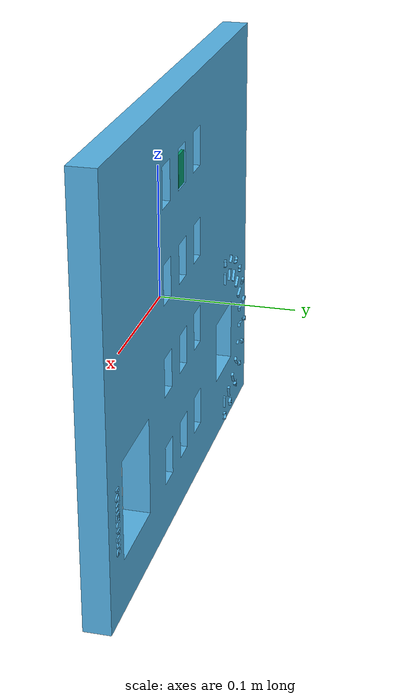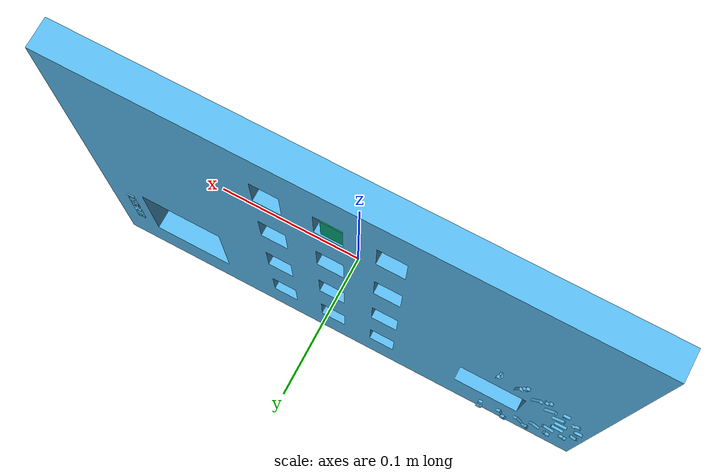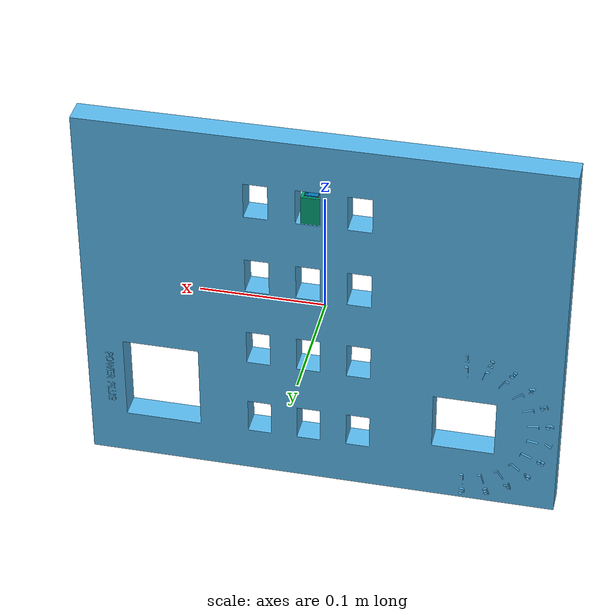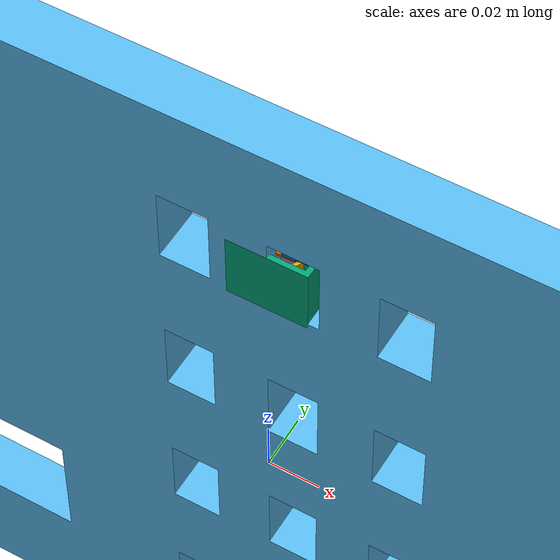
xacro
<?xml version="1.0"?>
<robot name="robocol_rover" xmlns:xacro="http://www.ros.org/wiki/xacro">
	<!-- Inertia matrices -->
	<xacro:include filename="$(find panel_description)/urdf/macros.xacro" />
	<!-- Robot constants and properties -->
	<xacro:include filename="$(find panel_description)/urdf/properties.xacro" />
	<!-- Gazebo aspects of the robot -->
	<!-- box -->
	<xacro:include filename="$(find panel_description)/urdf/box.xacro" />
	<xacro:include filename="$(find panel_description)/urdf/switch.xacro" />
	<xacro:include filename="$(find panel_description)/urdf/sector_switches.xacro" />

	<!-- sector_buttons -->
	<!-- sector_extra -->
	<!-- sector_switches -->
	<!-- Join parts -->

	<xacro:sector_switches/>
</robot>

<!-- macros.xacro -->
<!-- definitions of some macros for easier description of the robot-->
<robot xmlns:xacro="http://www.ros.org/wiki/xacro">
	<xacro:macro name="cylinder_inertia" params="m r h">
		<inertia
			ixx="${m*(3*r*r+h*h)/12}"
			ixy = "0"
			ixz = "0"
			iyy="${m*(3*r*r+h*h)/12}"
			iyz = "0"
			izz="${m*r*r/2}"
		/>
	</xacro:macro>
	<xacro:macro name="box_inertia" params="m x y z">
		<inertia
			ixx="${m*(y*y+z*z)/12}"
			ixy = "0"
			ixz = "0"
			iyy="${m*(x*x+z*z)/12}"
			iyz = "0"
			izz="${m*(x*x+z*z)/12}"
		/>
	</xacro:macro>
	<xacro:macro name="sphere_inertia" params="m r">
		<inertia
			ixx="${2*m*r*r/5}"
			ixy = "0"
			ixz = "0"
			iyy="${2*m*r*r/5}"
			iyz = "0"
			izz="${2*m*r*r/5}"
		/>
	</xacro:macro>
</robot>

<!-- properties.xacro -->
<robot xmlns:xacro="http://www.ros.org/wiki/xacro">
	<!-- Constants -->
	<xacro:property name="PI" value="3.1415926535897931"/>
	<!-- Scaling -->
	<xacro:property name="scale_XYZ" value="0.01"/>
	<xacro:property name="inertia_scale" value="0.0000001"/>
	<!-- Camera -->
	<xacro:property name="camera_link" value="0.05" /> <!-- Size of square 'camera' box -->
	<!-- Panel properties -->
	<xacro:property name="boxMass" value="1"/>
	<xacro:property name="boxWidth" value="0.4327"/>
	<xacro:property name="boxLength" value="0.72"/>
	<xacro:property name="boxHeight" value="0.174"/>
	<!-- box properties -->
	<xacro:property name="buttonMass" value="10"/>
	<xacro:property name="buttonWidth" value="0.4327"/>
	<xacro:property name="buttonLength" value="0.72"/>
	<xacro:property name="buttonHeight" value="0.174"/>
	<!-- Pot properties -->

	<!-- Switch properties -->
	<!-- Switch box properties-->
	<xacro:property name="switchboxMass" value="0.770"/>
	<xacro:property name="switchboxWidth" value="0.320"/>
	<xacro:property name="switchboxLength" value="0.380"/>
	<xacro:property name="switchboxHeight" value="0.020"/>
	<!-- enclosure properties -->
	<xacro:property name="enclosureMass" value="0.005"/>
	<xacro:property name="enclosureWidth" value="0.019"/>
	<xacro:property name="enclosureLength" value="0.030"/>
	<xacro:property name="enclosureHeight" value="0.026"/>
	<!-- Base properties -->
	<xacro:property name="baseMass" value="0.016"/>
	<xacro:property name="baseWidth" value="0.010"/>
	<xacro:property name="baseLength" value="0.010"/>
	<xacro:property name="baseHeight" value="0.070"/>
	<!-- Triangle properties -->
	<xacro:property name="triangleMass" value="0.010"/>
	<xacro:property name="triangleWidth" value="0.010"/>
	<xacro:property name="triangleLength" value="0.02"/>
	<xacro:property name="triangleHeight" value="0.010"/>
	<!-- Trigger properties -->
	<xacro:property name="triggerMass" value="0.002"/>
	<xacro:property name="triggerRadio" value="0.003"/>
	<xacro:property name="triggerHeight" value="0.011"/>
	<!-- Spring properties -->
	<xacro:property name="springMass" value="0.003"/>
	<xacro:property name="springRadio" value="0.00275"/>
	<xacro:property name="springHeight" value="0.005"/>
	<!-- Lever properties -->
	<xacro:property name="leverMass" value="0.008"/>
	<xacro:property name="leverRadio" value="0.0045"/>
	<xacro:property name="leverHeight" value="0.030"/>

	<!-- Pot properties -->

	<!-- Pot properties -->

	<!-- Pot properties -->

	<!-- Suspension -->
	<xacro:property name="suspensionEffort" value="10.0"/>
	<xacro:property name="suspensionSpeed" value="10.0"/>
	<xacro:property name="suspensionDamping" value="0.5"/>
	<xacro:property name="suspensionFriction" value="5.0"/>
	<!-- Wheels properties -->
	<xacro:property name="wheelWidth" value="0.08096"/>
	<xacro:property name="wheelRadius" value="0.1347"/>
	<xacro:property name="wheelMass" value="3.5"/>
	-->
</robot>

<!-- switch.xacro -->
<robot xmlns:xacro="http://www.ros.org/wiki/xacro">
	<xacro:macro name="switch" params="parent_sector_link child_link x y">

		<!-- SECTOR_SWITCH TO CYLINDER JOINT -->
		<joint name="sector_switch_joint" type="fixed">
			<parent link="${parent_sector_link}"/>
			<child link="${child_link}"/>
			<origin xyz="${x} ${y} 0.1" rpy="0 ${PI/2} 0"/>
		</joint>
		<!-- Switch sector LID -->
		<link name="${child_link}">
			<collision>
				<origin xyz="0 0 0"	rpy="0 0 0"/>
				<geometry>
					<mesh filename="package://panel_description/meshes/collisions/Interruptor/Enclosure.stl" scale="${scale_XYZ} ${scale_XYZ} ${scale_XYZ}"/>
				</geometry>
			</collision>
			<visual>
				<origin xyz="0 0 0"	rpy="0 0 0"/>
				<geometry>
					<mesh filename="package://panel_description/meshes/visual/Interruptor/Enclosure.stl" scale="${scale_XYZ} ${scale_XYZ} ${scale_XYZ}"/>
				</geometry>
			</visual>
			<inertial>
				<origin xyz="0 0 0"	rpy="0 0 0"/>
				<mass value="${enclosureMass}"/>
				<xacro:box_inertia m="${enclosureMass}" x="${enclosureWidth}" y="${enclosureLength}" z="${enclosureHeight}" />
			</inertial>
		</link>

		<!-- Enclosure TO Base1 JOINT -->
		<joint name="enclosure_base1_joint" type="fixed">
			<parent link="${child_link}"/>
			<child link="base1_link"/>
			<origin xyz="${-0.0125} ${0.01} ${-0.0125}" rpy="0 ${-3*PI/2} ${-PI/2}"/>
		</joint>

		<link name='base1_link'>
			<collision>
				<origin xyz="0 0 0"	rpy="0 0 0"/>
				<geometry>
					<mesh filename="package://panel_description/meshes/collisions/Interruptor/Base1.stl" scale="${scale_XYZ} ${scale_XYZ} ${scale_XYZ}"/>
				</geometry>
			</collision>
			<visual>
				<origin xyz="0 0 0"	rpy="0 0 0"/>
				<geometry>
					<mesh filename="package://panel_description/meshes/visual/Interruptor/Base1.stl" scale="${scale_XYZ} ${scale_XYZ} ${scale_XYZ}"/>
				</geometry>
			</visual>
			<inertial>
				<origin xyz="0 0 0"	rpy="0 0 0"/>
				<mass value="${baseMass}"/>
				<xacro:box_inertia m="${baseMass}" x="${baseWidth}" y="${baseLength}" z="${baseHeight}" />
			</inertial>
		</link>

		<!-- Enclosure TO Base2 JOINT -->
		<joint name="enclosure_base2_joint" type="fixed">
			<parent link="${child_link}"/>
			<child link="base2_link"/>
			<origin xyz="${-0.0125} ${0.01} 0.01" rpy="0 0 ${-PI/2}"/>
		</joint>

		<link name='base2_link'>
			<collision>
				<origin xyz="${-0.01} 0.003 ${-0.005}"	rpy="0 0 0"/>
				<geometry>
					<mesh filename="package://panel_description/meshes/collisions/Interruptor/Base2.stl" scale="${scale_XYZ} ${scale_XYZ} ${scale_XYZ}"/>
				</geometry>
			</collision>
			<visual>
				<origin xyz="0 0 0"	rpy="0 0 0"/>
				<geometry>
					<mesh filename="package://panel_description/meshes/visual/Interruptor/Base2.stl" scale="${scale_XYZ} ${scale_XYZ} ${scale_XYZ}"/>
				</geometry>
			</visual>
			<inertial>
				<origin xyz="0 0 0"	rpy="0 0 0"/>
				<mass value="${baseMass}"/>
				<xacro:box_inertia m="${baseMass}" x="${baseWidth}" y="${baseLength}" z="${baseHeight}" />
			</inertial>
		</link>

		<!-- Base1 TO triangle JOINT -->
		<joint name="base1_triangle_joint" type="fixed">
			<parent link="base1_link"/>
			<child link="triangle_link"/>
			<origin xyz="${-0.01} 0.003 ${-0.005}" rpy="0 0 0"/>
		</joint>

		<link name='triangle_link'>
			<collision>
				<origin xyz="0 0 0"	rpy="0 0 0"/>
				<geometry>
					<mesh filename="package://panel_description/meshes/collisions/Interruptor/Triangle.stl" scale="${scale_XYZ} ${scale_XYZ} ${scale_XYZ}"/>
				</geometry>
			</collision>
			<visual>
				<origin xyz="0 0 0"	rpy="0 0 0"/>
				<geometry>
					<mesh filename="package://panel_description/meshes/visual/Interruptor/Triangle.stl" scale="${scale_XYZ} ${scale_XYZ} ${scale_XYZ}"/>
				</geometry>
			</visual>
			<inertial>
				<origin xyz="0 0 0"	rpy="0 0 0"/>
				<mass value="${triangleMass}"/>
				<xacro:box_inertia m="${triangleMass}" x="${triangleWidth}" y="${triangleLength}" z="${triangleHeight}" />
			</inertial>
		</link>

		<!-- Triangle TO trigger JOINT Existe ligera colision con triangle, solo mover x un poquito (+- 0.001)-->
		<joint name="triangle_trigger_joint" type="revolute">
			<parent link="triangle_link"/>
			<child link="trigger_link"/>
			<origin xyz="${-0.005} ${0.015} ${0.005}" rpy="${3*PI/2} ${PI/2} ${PI/2}"/>
			<limit lower="${-PI/4}" upper="${PI/4}" effort="0" velocity="1"/>
		</joint>

		<link name='trigger_link'>
			<collision>
				<origin xyz="0 0 0"	rpy="0 0 0"/>
				<geometry>
					<mesh filename="package://panel_description/meshes/collisions/Interruptor/Trigger.stl" scale="${scale_XYZ} ${scale_XYZ} ${scale_XYZ}"/>
				</geometry>
			</collision>
			<visual>
				<origin xyz="0 0 0"	rpy="0 0 0"/>
				<geometry>
					<mesh filename="package://panel_description/meshes/visual/Interruptor/Trigger.stl" scale="${scale_XYZ} ${scale_XYZ} ${scale_XYZ}"/>
				</geometry>
			</visual>
			<inertial>
				<origin xyz="0 0 0"	rpy="0 0 0"/>
				<mass value="${triggerMass}"/>
				<xacro:cylinder_inertia m="${triggerMass}" r="${triggerRadio}" h="${triggerHeight}" />
			</inertial>
		</link>

<!-- Trigger to spring JOINT -->
		<joint name="trigger_spring_joint" type="fixed">
			<parent link="trigger_link"/>
			<child link="spring_link"/>
			<origin xyz="0 0 0" rpy="0 0 0"/>
		</joint>

		<link name='spring_link'>
			<collision>
				<origin xyz="0 0 0"	rpy="0 0 0"/>
				<geometry>
					<mesh filename="package://panel_description/meshes/collisions/Interruptor/Spring.stl" scale="${scale_XYZ} ${scale_XYZ} ${scale_XYZ}"/>
				</geometry>
			</collision>
			<visual>
				<origin xyz="0 0 0"	rpy="0 0 0"/>
				<geometry>
					<mesh filename="package://panel_description/meshes/visual/Interruptor/Spring.stl" scale="${scale_XYZ} ${scale_XYZ} ${scale_XYZ}"/>
				</geometry>
			</visual>
			<inertial>
				<origin xyz="0 0 0"	rpy="0 0 0"/>
				<mass value="${springMass}"/>
				<xacro:cylinder_inertia m="${springMass}" r="${springRadio}" h="${springHeight}" />
			</inertial>
		</link>

		<!-- Spring TO lever JOINT -->
		<joint name="spring_lever_joint" type="fixed">
			<parent link="spring_link"/>
			<child link="lever_link"/>
			<origin xyz="0 0 0" rpy="0 0 0"/>
		</joint>

		<link name='lever_link'>
			<collision>
				<origin xyz="0 0 0"	rpy="0 0 0"/>
				<geometry>
					<mesh filename="package://panel_description/meshes/collisions/Interruptor/Lever.stl" scale="${scale_XYZ} ${scale_XYZ} ${scale_XYZ}"/>
				</geometry>
			</collision>
			<visual>
				<origin xyz="0 0 0"	rpy="0 0 0"/>
				<geometry>
					<mesh filename="package://panel_description/meshes/visual/Interruptor/Lever.stl" scale="${scale_XYZ} ${scale_XYZ} ${scale_XYZ}"/>
				</geometry>
			</visual>
			<inertial>
				<origin xyz="0 0 0"	rpy="0 0 0"/>
				<mass value="${leverMass}"/>
				<xacro:cylinder_inertia m="${leverMass}" r="${leverRadio}" h="${leverHeight}" />
			</inertial>
		</link>

	</xacro:macro>
</robot>

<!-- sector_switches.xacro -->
<robot xmlns:xacro="http://www.ros.org/wiki/xacro">
	<xacro:macro name="sector_switches" params="">

		<link name="base_footprint"/>

		<joint name="sector_switch_joint" type="fixed">
			<parent link="base_footprint"/>
			<child link="sector_switch_link"/>
			<origin xyz="0 0 0" rpy="0 0 0"/>
		</joint>

		<link name="sector_switch_link">
			<collision>
				<origin xyz="0 0 0"	rpy="0 0 0"/>
				<geometry>
					<mesh filename="package://panel_description/meshes/collisions/sector_switch.stl" scale="${scale_XYZ} ${scale_XYZ} ${scale_XYZ}"/>
				</geometry>
			</collision>
			<visual>
				<origin xyz="0 0 0"	rpy="0 0 0"/>
				<geometry>
					<mesh filename="package://panel_description/meshes/visual/sector_switch.stl" scale="${scale_XYZ} ${scale_XYZ} ${scale_XYZ}"/>
				</geometry>
			</visual>
			<inertial>
				<origin xyz="0 0 0"	rpy="0 0 0"/>switch_1_joint
				<mass value="${switchboxMass}"/>
				<xacro:box_inertia m="${switchboxMass}" x="${switchboxWidth}" y="${switchboxLength}" z="${switchboxHeight}" />
			</inertial>
		</link>

		<!-- Join parts -->

		<xacro:switch parent_sector_link ="sector_switch_link"  child_link="switch_1_joint" x="0" y="0"/>
	</xacro:macro>
</robot>
